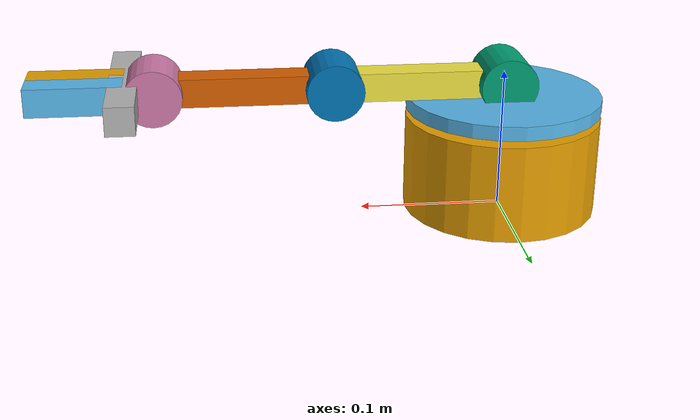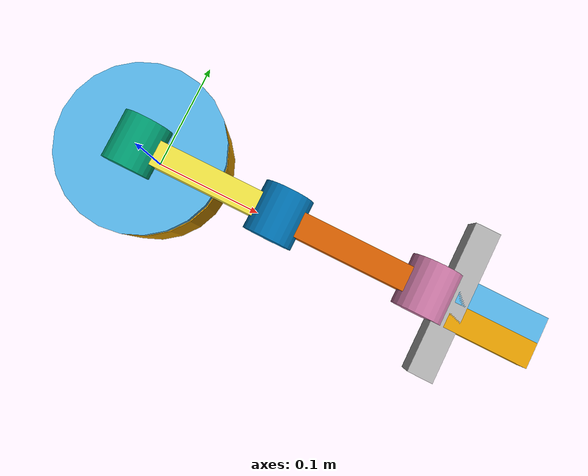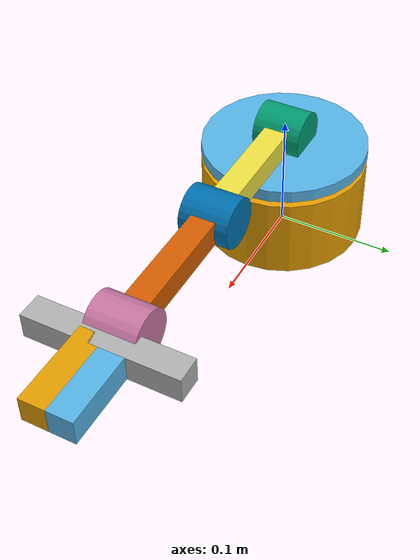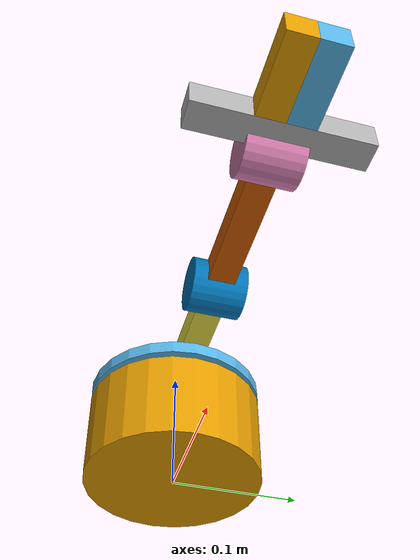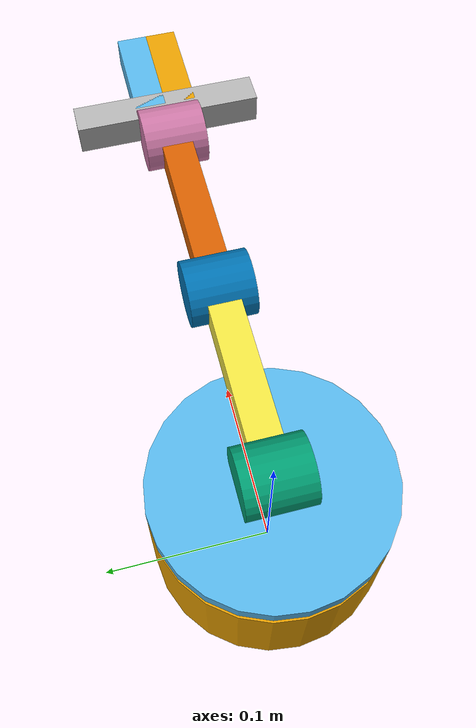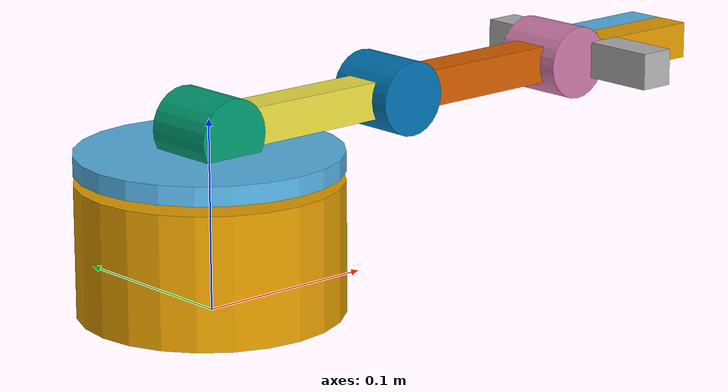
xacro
<?xml version="1.0"?>
<robot name="Swekbot 1.33.7" xmlns:xacro="http://ros.org/wiki/xacro">

  <xacro:property name="M_PI" value="3.14159"/>
  <xacro:property name="base_width" value="0.069" />
  <xacro:property name="base_height" value="0.069" />
  <xacro:property name="servo_width" value="0.020" />
  <xacro:property name="servo_length" value="0.040" />
  <xacro:property name="shoulder_height" value="0.010" />
  <xacro:property name="shoulder_offset" value="0.015" />
  <xacro:property name="upperarm_length" value="0.121" />
  <xacro:property name="lowerarm_length" value="0.127" />
  <xacro:property name="gripper_length" value="0.066" />
  <xacro:property name="gripper_size" value="0.020" />
  <xacro:property name="gripper_open" value="0.080" />

  <!-- Links -->
  <link name="base_link">
    <visual>
      <origin xyz="0 0 ${base_height/2}" rpy="0 0 0"/>
      <geometry>
        <cylinder radius="${base_width}" length="${base_height}"/>
      </geometry>
    </visual>
  </link>

  <link name="shoulder_rotate_link">
    <visual>
      <origin xyz="0 0 0" rpy="0 0 0"/>
      <geometry>
        <cylinder radius="${base_width}" length="${shoulder_height}"/>
      </geometry>
    </visual>
  </link>

  <link name="shoulder_updown_link">
    <visual>
      <origin xyz="0 0 0" rpy="0 0 0"/>
      <geometry>
        <cylinder radius="${servo_width}" length="${servo_length}"/>
      </geometry>
    </visual>
  </link>

  <link name="upperarm_link">
    <visual>
      <origin xyz="0 0 0" rpy="0 0 0"/>
      <geometry>
        <box size="${upperarm_length} ${servo_width} ${servo_width}"/>
      </geometry>
    </visual>
  </link>

  <link name="elbow_link">
    <visual>
      <origin xyz="0 0 0" rpy="0 0 0"/>
      <geometry>
        <cylinder radius="${servo_width}" length="${servo_length}"/>
      </geometry>
    </visual>
  </link>

  <link name="lowerarm_link">
    <visual>
      <origin xyz="0 0 0" rpy="0 0 0"/>
      <geometry>
        <box size="${lowerarm_length} ${servo_width} ${servo_width}"/>
      </geometry>
    </visual>
  </link>

  <link name="wrist_link">
    <visual>
      <origin xyz="0 0 0" rpy="0 0 0"/>
      <geometry>
        <cylinder radius="${servo_width}" length="${servo_length}"/>
      </geometry>
    </visual>
  </link>

  <link name="gripper_base_link">
    <visual>
      <origin xyz="0 0 0" rpy="0 0 0"/>
      <geometry>
        <box size="${gripper_size} ${gripper_open+gripper_size*2} ${gripper_size}"/>
      </geometry>
    </visual>
  </link>

  <link name="gripper_left_link">
    <visual>
      <origin xyz="0 0 0" rpy="0 0 0"/>
      <geometry>
        <box size="${gripper_length} ${gripper_size} ${gripper_size}"/>
      </geometry>
    </visual>
  </link>
  <link name="gripper_right_link">
    <visual>
      <origin xyz="0 0 0" rpy="0 0 0"/>
      <geometry>
        <box size="${gripper_length} ${gripper_size} ${gripper_size}"/>
      </geometry>
    </visual>
  </link>

  <!-- Joints -->
  <joint name="shoulder_rotate_joint" type="revolute">
    <origin xyz="0 0 ${base_height + shoulder_height}" rpy="0 0 0"/>
    <parent link="base_link"/>
    <child link="shoulder_rotate_link"/>
    <axis xyz="0 0 1"/>
    <limit lower="-${M_PI/2}" upper="${M_PI/2}" effort="0" velocity="3.67"/>
  </joint>

  <joint name="shoulder_updown_joint" type="revolute">
    <origin xyz="0 0 ${shoulder_offset}" rpy="${M_PI/2} 0 0"/>
    <parent link="shoulder_rotate_link"/>
    <child link="shoulder_updown_link"/>
    <axis xyz="0 0 1"/>
    <limit lower="0" upper="${M_PI}" effort="0" velocity="3.67"/>
  </joint>

  <joint name="upperarm_joint" type="fixed">
    <origin xyz="${upperarm_length/2} 0 0" rpy="${M_PI/2} 0 0"/>
    <parent link="shoulder_updown_link"/>
    <child link="upperarm_link"/>
  </joint>

  <joint name="elbow_joint" type="revolute">
    <origin xyz="${upperarm_length/2} 0 0" rpy="${M_PI/2} 0 0"/>
    <parent link="upperarm_link"/>
    <child link="elbow_link"/>
    <axis xyz="0 0 1"/>
    <limit lower="-${M_PI/2}" upper="${M_PI/2}" effort="0" velocity="3.67"/>
  </joint>

  <joint name="lowerarm_joint" type="fixed">
    <origin xyz="${lowerarm_length/2} 0 0" rpy="${M_PI/2} 0 0"/>
    <parent link="elbow_link"/>
    <child link="lowerarm_link"/>
  </joint>

  <joint name="wrist_joint" type="revolute">
    <origin xyz="${upperarm_length/2} 0 0" rpy="${M_PI/2} 0 0"/>
    <parent link="lowerarm_link"/>
    <child link="wrist_link"/>
    <axis xyz="0 0 1"/>
    <limit lower="-${M_PI/2}" upper="${M_PI/2}" effort="0" velocity="3.67"/>
  </joint>

  <joint name="gripper_base_joint" type="fixed">
    <origin xyz="${servo_width} 0 0" rpy="${M_PI/2} 0 0"/>
    <parent link="wrist_link"/>
    <child link="gripper_base_link"/>
  </joint>

  <joint name="gripper_left_joint" type="prismatic">
    <origin xyz="${gripper_length/2} ${gripper_size/2} 0" rpy="${M_PI/2} 0 0"/>
    <parent link="gripper_base_link"/>
    <child link="gripper_left_link"/>
    <axis xyz="0 0 1"/>
    <limit lower="-${gripper_open/2}" upper="0" effort="0" velocity="3.67"/>
  </joint>

  <joint name="gripper_right_joint" type="prismatic">
    <origin xyz="${gripper_length/2} -${gripper_size/2} 0" rpy="${M_PI/2} 0 0"/>
    <parent link="gripper_base_link"/>
    <child link="gripper_right_link"/>
    <axis xyz="0 0 1"/>
    <limit lower="0" upper="${gripper_open/2}" effort="0" velocity="3.67"/>
  </joint>

</robot>
